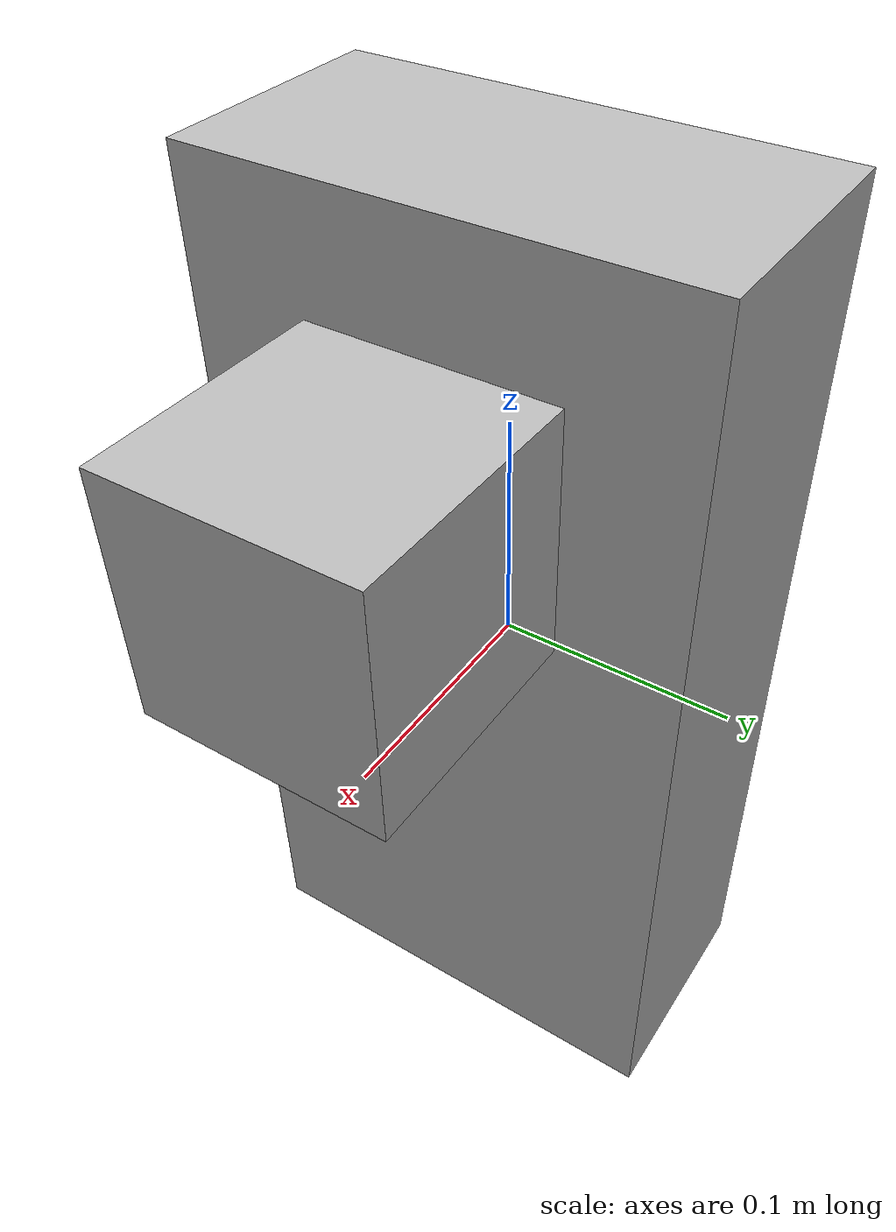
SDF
<?xml version='1.0' encoding='utf-8'?>
<sdf version="1.7">
  <model name="joint_ball">
    <link name="joint_ball_link_1">
      <visual name="joint_ball_link_1_visual">
        <geometry>
          <box>
            <size>0.1 0.2 0.4</size>
          </box>
        </geometry>
      </visual>
      <collision name="joint_ball_link_1_collision">
        <geometry>
          <box>
            <size>0.1 0.2 0.4</size>
          </box>
        </geometry>
      </collision>
      <inertial>
        <mass>12.3</mass>
        <inertia>
          <ixx>0.205</ixx>
          <ixy>0</ixy>
          <ixz>0</ixz>
          <iyy>0.17425</iyy>
          <iyz>0</iyz>
          <izz>0.05125</izz>
        </inertia>
      </inertial>
    </link>
    <link name="joint_ball_link_2">
      <pose>0.1 0 0.1 0 0 0</pose>
      <visual name="joint_ball_link_2_visual">
        <geometry>
          <box>
            <size>0.1 0.1 0.1</size>
          </box>
        </geometry>
      </visual>
      <collision name="joint_ball_link_2_collision">
        <geometry>
          <box>
            <size>0.1 0.1 0.1</size>
          </box>
        </geometry>
      </collision>
      <inertial>
        <mass>1.23</mass>
        <inertia>
          <ixx>0.00205</ixx>
          <ixy>0</ixy>
          <ixz>0</ixz>
          <iyy>0.00205</iyy>
          <iyz>0</iyz>
          <izz>0.00205</izz>
        </inertia>
      </inertial>
    </link>

    <joint name="joint_ball" type="ball">
      <parent>joint_ball_link_1</parent>
      <child>joint_ball_link_2</child>
    </joint>
  </model>
</sdf>
